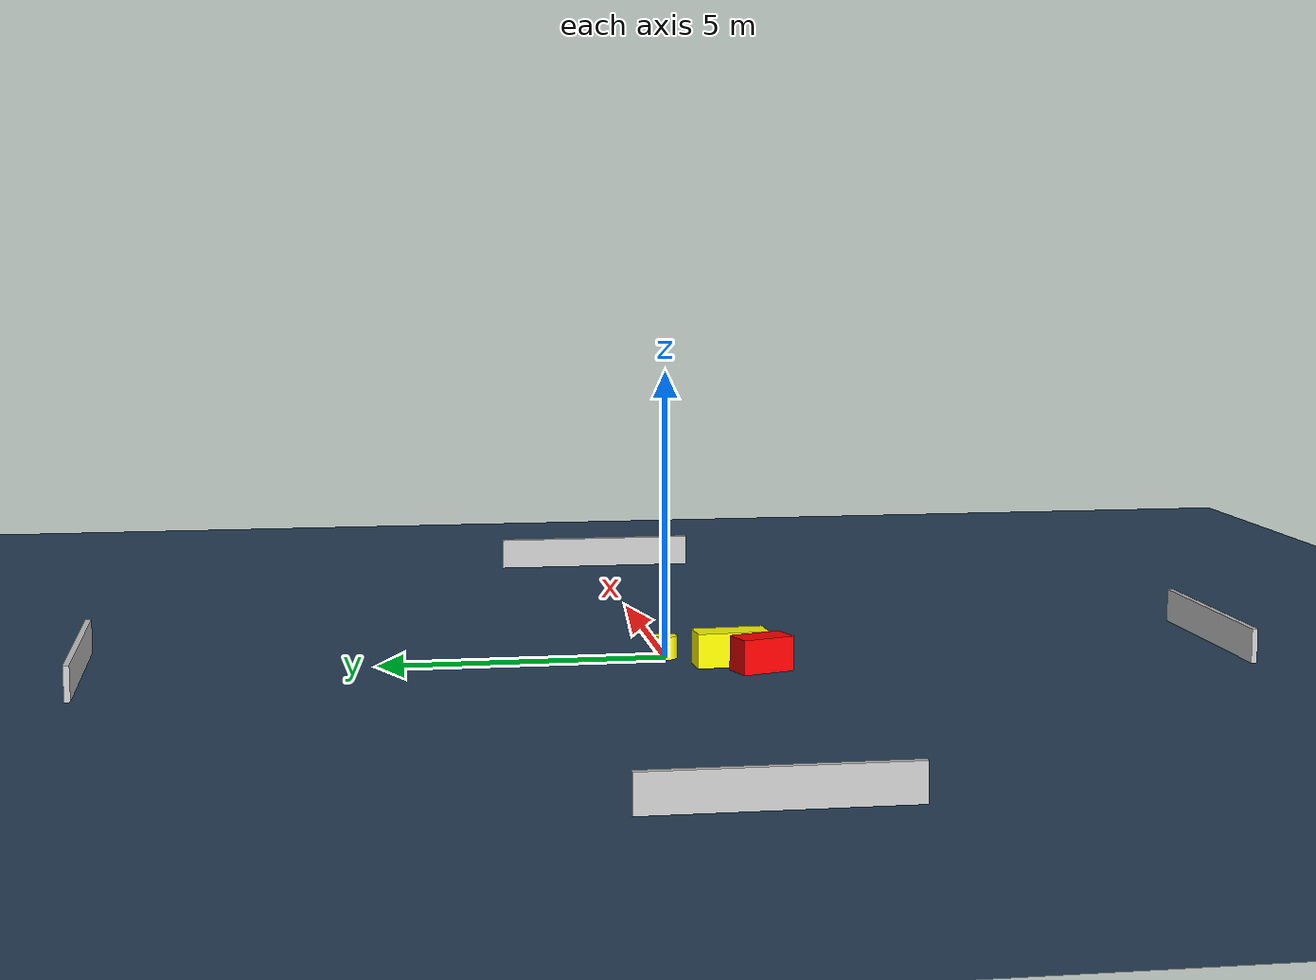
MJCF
<?xml version="1.0" ?>
<mujoco model="generated_environment">
  <option timestep="0.01" integrator="RK4" cone="elliptic"/>
  <default>
    <geom density="1"/>
  </default>
  <asset>
    <texture builtin="gradient" height="3072" name="skybox" rgb1="0.3 0.5 0.7" rgb2="0 0 0" type="skybox" width="512"/>
    <texture builtin="checker" height="300" name="groundplane" rgb1="0.2 0.3 0.4" rgb2="0.1 0.2 0.3" type="2d" width="300"/>
    <material name="groundplane" reflectance="0.2" texrepeat="5 5" texture="groundplane"/>
  </asset>
  <worldbody>
    <light dir="0 0 -1" directional="true" pos="0 0 1.5"/>
    <geom condim="3" friction="0.5 0.005 0.001" material="groundplane" name="floor" pos="0 0 0" size="0 0 0.05" type="plane"/>
    <body name="walls">
      <geom name="wall_1" condim="4" pos="-10.0 0.0 0.3" rgba="0.800000011920929 0.800000011920929 0.800000011920929 1.0" size="0.05 2.0 0.3" type="box"/>
      <geom name="wall_2" condim="4" pos="10.0 0.0 0.3" rgba="0.800000011920929 0.800000011920929 0.800000011920929 1.0" size="0.05 2.0 0.3" type="box"/>
      <geom name="wall_3" condim="4" pos="0.0 -10.0 0.3" rgba="0.800000011920929 0.800000011920929 0.800000011920929 1.0" size="2.0 0.05 0.3" type="box"/>
      <geom name="wall_4" condim="4" pos="0.0 10.0 0.3" rgba="0.800000011920929 0.800000011920929 0.800000011920929 1.0" size="2.0 0.05 0.3" type="box"/>
    </body>
    <body name="robot">
      <joint name="joint_x" type="slide" pos="0 0 0" axis="1 0 0"/>
      <joint name="joint_y" type="slide" pos="0 0 0" axis="0 1 0"/>
      <geom name="robot" type="cylinder" pos="0.0 0.0 0.2" size="0.2 0.2 0.0" mass="5.0" friction="1.0 0.005 0.0001" condim="4" rgba="1.0 1.0 0.0 1.0"/>
    </body>
    <body name="obstacle_1_movable">
      <geom name="obstacle_1_movable" condim="4" pos="-0.7084928536351536 -1.0205181076448453 0.3" euler="0 0 183.876601810003" friction="0.0 0.005 0.001" rgba="1.0 1.0 0.0 1.0" size="0.269141234227532 0.6298639647134174 0.3" type="box" mass="0.1"/>
      <joint type="free"/>
    </body>
    <body name="obstacle_2_static">
      <geom name="obstacle_2_static" condim="4" pos="-1.28544740219978 -1.457775436690344 0.3" euler="0 0 197.59957096977985" friction="0.0 0.005 0.001" rgba="1.0 0.0 0.0 1.0" size="0.26579920488505654 0.4733321392064396 0.3" type="box"/>
    </body>
  </worldbody>
  <actuator>
    <motor name="actuator_x" joint="joint_x" gear="1" ctrlrange="-1 1"/>
    <motor name="actuator_y" joint="joint_y" gear="1" ctrlrange="-1 1"/>
  </actuator>
</mujoco>
